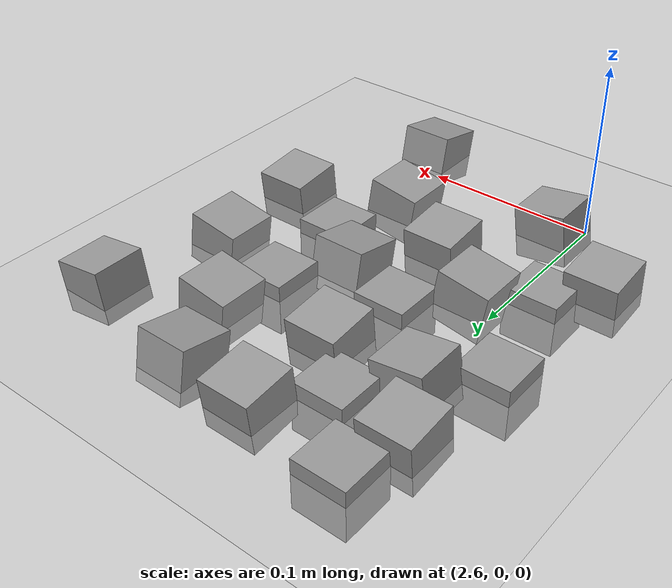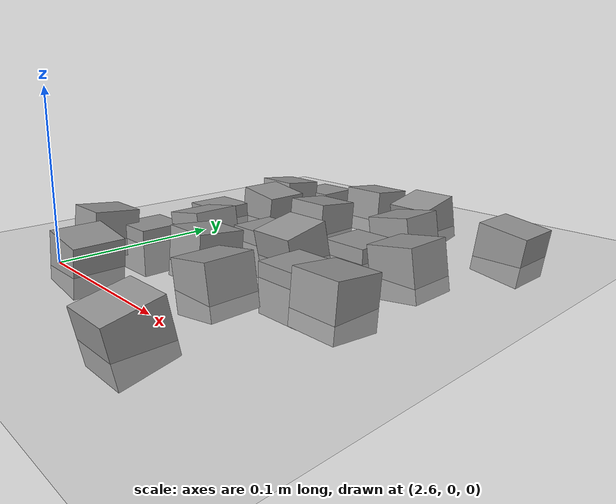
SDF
<sdf version="1.7">
 <world name="default">
  <model name="ground_plane">
   <static>1</static>
   <link name="link">
    <collision name="collision">
     <geometry><plane><normal>0 0 1</normal><size>100 100</size></plane></geometry>
     <surface><friction><ode><mu>100</mu><mu2>50</mu2></ode></friction></surface>
    </collision>
    <visual name="visual">
     <cast_shadows>0</cast_shadows>
     <geometry><plane><normal>0 0 1</normal><size>100 100</size></plane></geometry>
     <material>
      <script><uri>file://media/materials/scripts/gazebo.material</uri><name>Gazebo/Grey</name></script>
     </material>
    </visual>
   </link>
  </model>
  <model name="stone_road_7">
   <link name="link_0_clone_12">
    <inertial>
     <mass>1</mass>
     <inertia>
      <ixx>0.166667</ixx>
      <ixy>0</ixy>
      <ixz>0</ixz>
      <iyy>0.166667</iyy>
      <iyz>0</iyz>
      <izz>0.166667</izz>
     </inertia>
    </inertial>
    <pose>0.142624 -0.262715 0.003778 0.2 -0 0</pose>
    <kinematic>1</kinematic>
    <visual name="visual">
     <geometry><box><size>0.03 0.03 0.03</size></box></geometry>
     <material>
      <lighting>1</lighting>
      <script><uri>file://media/materials/scripts/gazebo.material</uri><name>Gazebo/Grey</name></script>
      <shader type="pixel"><normal_map>__default__</normal_map></shader>
      <ambient>0.3 0.3 0.3 1</ambient>
      <diffuse>0.7 0.7 0.7 1</diffuse>
      <specular>0.01 0.01 0.01 1</specular>
      <emissive>0 0 0 1</emissive>
     </material>
    </visual>
    <collision name="collision">
     <geometry><box><size>0.03 0.03 0.03</size></box></geometry>
     <surface>
      <friction>
       <ode><mu>1</mu><mu2>1</mu2><fdir1>0 0 0</fdir1><slip1>0</slip1><slip2>0</slip2></ode>
       <torsional>
        <coefficient>1</coefficient>
        <patch_radius>0</patch_radius>
        <surface_radius>0</surface_radius>
        <use_patch_radius>1</use_patch_radius>
        <ode><slip>0</slip></ode>
       </torsional>
      </friction>
      <bounce><restitution_coefficient>0</restitution_coefficient><threshold>1e+06</threshold></bounce>
      <contact>
       <collide_without_contact>0</collide_without_contact>
       <collide_without_contact_bitmask>1</collide_without_contact_bitmask>
       <collide_bitmask>1</collide_bitmask>
       <ode>
        <soft_cfm>0</soft_cfm>
        <soft_erp>0.2</soft_erp>
        <kp>1e+13</kp>
        <kd>1</kd>
        <max_vel>0.01</max_vel>
        <min_depth>0</min_depth>
       </ode>
       <bullet>
        <split_impulse>1</split_impulse>
        <split_impulse_penetration_threshold>-0.01</split_impulse_penetration_threshold>
        <soft_cfm>0</soft_cfm>
        <soft_erp>0.2</soft_erp>
        <kp>1e+13</kp>
        <kd>1</kd>
       </bullet>
      </contact>
     </surface>
    </collision>
   </link>
   <link name="link_0_clone_13">
    <inertial>
     <mass>1</mass>
     <inertia>
      <ixx>0.166667</ixx>
      <ixy>0</ixy>
      <ixz>0</ixz>
      <iyy>0.166667</iyy>
      <iyz>0</iyz>
      <izz>0.166667</izz>
     </inertia>
    </inertial>
    <pose>0.107601 -0.134881 0.003778 0.2 -0 0</pose>
    <kinematic>1</kinematic>
    <visual name="visual">
     <geometry><box><size>0.03 0.03 0.03</size></box></geometry>
     <material>
      <lighting>1</lighting>
      <script><uri>file://media/materials/scripts/gazebo.material</uri><name>Gazebo/Grey</name></script>
      <shader type="pixel"><normal_map>__default__</normal_map></shader>
      <ambient>0.3 0.3 0.3 1</ambient>
      <diffuse>0.7 0.7 0.7 1</diffuse>
      <specular>0.01 0.01 0.01 1</specular>
      <emissive>0 0 0 1</emissive>
     </material>
    </visual>
    <collision name="collision">
     <geometry><box><size>0.03 0.03 0.03</size></box></geometry>
     <surface>
      <friction>
       <ode><mu>1</mu><mu2>1</mu2><fdir1>0 0 0</fdir1><slip1>0</slip1><slip2>0</slip2></ode>
       <torsional>
        <coefficient>1</coefficient>
        <patch_radius>0</patch_radius>
        <surface_radius>0</surface_radius>
        <use_patch_radius>1</use_patch_radius>
        <ode><slip>0</slip></ode>
       </torsional>
      </friction>
      <bounce><restitution_coefficient>0</restitution_coefficient><threshold>1e+06</threshold></bounce>
      <contact>
       <collide_without_contact>0</collide_without_contact>
       <collide_without_contact_bitmask>1</collide_without_contact_bitmask>
       <collide_bitmask>1</collide_bitmask>
       <ode>
        <soft_cfm>0</soft_cfm>
        <soft_erp>0.2</soft_erp>
        <kp>1e+13</kp>
        <kd>1</kd>
        <max_vel>0.01</max_vel>
        <min_depth>0</min_depth>
       </ode>
       <bullet>
        <split_impulse>1</split_impulse>
        <split_impulse_penetration_threshold>-0.01</split_impulse_penetration_threshold>
        <soft_cfm>0</soft_cfm>
        <soft_erp>0.2</soft_erp>
        <kp>1e+13</kp>
        <kd>1</kd>
       </bullet>
      </contact>
     </surface>
    </collision>
   </link>
   <link name="link_0_clone_2_clone_0">
    <inertial>
     <mass>1</mass>
     <inertia>
      <ixx>0.166667</ixx>
      <ixy>0</ixy>
      <ixz>0</ixz>
      <iyy>0.166667</iyy>
      <iyz>0</iyz>
      <izz>0.166667</izz>
     </inertia>
    </inertial>
    <pose>0.026852 -0.0813 0.003778 0 0.15 0</pose>
    <kinematic>1</kinematic>
    <visual name="visual">
     <geometry><box><size>0.03 0.03 0.03</size></box></geometry>
     <material>
      <lighting>1</lighting>
      <script><uri>file://media/materials/scripts/gazebo.material</uri><name>Gazebo/Grey</name></script>
      <shader type="pixel"><normal_map>__default__</normal_map></shader>
      <ambient>0.3 0.3 0.3 1</ambient>
      <diffuse>0.7 0.7 0.7 1</diffuse>
      <specular>0.01 0.01 0.01 1</specular>
      <emissive>0 0 0 1</emissive>
     </material>
    </visual>
    <collision name="collision">
     <geometry><box><size>0.03 0.03 0.03</size></box></geometry>
     <surface>
      <friction>
       <ode><mu>1</mu><mu2>1</mu2><fdir1>0 0 0</fdir1><slip1>0</slip1><slip2>0</slip2></ode>
       <torsional>
        <coefficient>1</coefficient>
        <patch_radius>0</patch_radius>
        <surface_radius>0</surface_radius>
        <use_patch_radius>1</use_patch_radius>
        <ode><slip>0</slip></ode>
       </torsional>
      </friction>
      <bounce><restitution_coefficient>0</restitution_coefficient><threshold>1e+06</threshold></bounce>
      <contact>
       <collide_without_contact>0</collide_without_contact>
       <collide_without_contact_bitmask>1</collide_without_contact_bitmask>
       <collide_bitmask>1</collide_bitmask>
       <ode>
        <soft_cfm>0</soft_cfm>
        <soft_erp>0.2</soft_erp>
        <kp>1e+13</kp>
        <kd>1</kd>
        <max_vel>0.01</max_vel>
        <min_depth>0</min_depth>
       </ode>
       <bullet>
        <split_impulse>1</split_impulse>
        <split_impulse_penetration_threshold>-0.01</split_impulse_penetration_threshold>
        <soft_cfm>0</soft_cfm>
        <soft_erp>0.2</soft_erp>
        <kp>1e+13</kp>
        <kd>1</kd>
       </bullet>
      </contact>
     </surface>
    </collision>
   </link>
   <link name="link_0_clone_2_clone_2_clone_13_clone_clone_10">
    <inertial>
     <mass>1</mass>
     <inertia>
      <ixx>0.166667</ixx>
      <ixy>0</ixy>
      <ixz>0</ixz>
      <iyy>0.166667</iyy>
      <iyz>0</iyz>
      <izz>0.166667</izz>
     </inertia>
    </inertial>
    <pose>-0.006825 -0.196489 0.003778 -0.1 0 0</pose>
    <kinematic>1</kinematic>
    <visual name="visual">
     <geometry><box><size>0.03 0.03 0.03</size></box></geometry>
     <material>
      <lighting>1</lighting>
      <script><uri>file://media/materials/scripts/gazebo.material</uri><name>Gazebo/Grey</name></script>
      <shader type="pixel"><normal_map>__default__</normal_map></shader>
      <ambient>0.3 0.3 0.3 1</ambient>
      <diffuse>0.7 0.7 0.7 1</diffuse>
      <specular>0.01 0.01 0.01 1</specular>
      <emissive>0 0 0 1</emissive>
     </material>
    </visual>
    <collision name="collision">
     <geometry><box><size>0.03 0.03 0.03</size></box></geometry>
     <surface>
      <friction>
       <ode><mu>1</mu><mu2>1</mu2><fdir1>0 0 0</fdir1><slip1>0</slip1><slip2>0</slip2></ode>
       <torsional>
        <coefficient>1</coefficient>
        <patch_radius>0</patch_radius>
        <surface_radius>0</surface_radius>
        <use_patch_radius>1</use_patch_radius>
        <ode><slip>0</slip></ode>
       </torsional>
      </friction>
      <bounce><restitution_coefficient>0</restitution_coefficient><threshold>1e+06</threshold></bounce>
      <contact>
       <collide_without_contact>0</collide_without_contact>
       <collide_without_contact_bitmask>1</collide_without_contact_bitmask>
       <collide_bitmask>1</collide_bitmask>
       <ode>
        <soft_cfm>0</soft_cfm>
        <soft_erp>0.2</soft_erp>
        <kp>1e+13</kp>
        <kd>1</kd>
        <max_vel>0.01</max_vel>
        <min_depth>0</min_depth>
       </ode>
       <bullet>
        <split_impulse>1</split_impulse>
        <split_impulse_penetration_threshold>-0.01</split_impulse_penetration_threshold>
        <soft_cfm>0</soft_cfm>
        <soft_erp>0.2</soft_erp>
        <kp>1e+13</kp>
        <kd>1</kd>
       </bullet>
      </contact>
     </surface>
    </collision>
   </link>
   <link name="link_0_clone_2_clone_2_clone_13_clone_clone_11">
    <inertial>
     <mass>1</mass>
     <inertia>
      <ixx>0.166667</ixx>
      <ixy>0</ixy>
      <ixz>0</ixz>
      <iyy>0.166667</iyy>
      <iyz>0</iyz>
      <izz>0.166667</izz>
     </inertia>
    </inertial>
    <pose>0.178889 -0.173779 0.003778 -0.1 0 0</pose>
    <kinematic>1</kinematic>
    <visual name="visual">
     <geometry><box><size>0.03 0.03 0.03</size></box></geometry>
     <material>
      <lighting>1</lighting>
      <script><uri>file://media/materials/scripts/gazebo.material</uri><name>Gazebo/Grey</name></script>
      <shader type="pixel"><normal_map>__default__</normal_map></shader>
      <ambient>0.3 0.3 0.3 1</ambient>
      <diffuse>0.7 0.7 0.7 1</diffuse>
      <specular>0.01 0.01 0.01 1</specular>
      <emissive>0 0 0 1</emissive>
     </material>
    </visual>
    <collision name="collision">
     <geometry><box><size>0.03 0.03 0.03</size></box></geometry>
     <surface>
      <friction>
       <ode><mu>1</mu><mu2>1</mu2><fdir1>0 0 0</fdir1><slip1>0</slip1><slip2>0</slip2></ode>
       <torsional>
        <coefficient>1</coefficient>
        <patch_radius>0</patch_radius>
        <surface_radius>0</surface_radius>
        <use_patch_radius>1</use_patch_radius>
        <ode><slip>0</slip></ode>
       </torsional>
      </friction>
      <bounce><restitution_coefficient>0</restitution_coefficient><threshold>1e+06</threshold></bounce>
      <contact>
       <collide_without_contact>0</collide_without_contact>
       <collide_without_contact_bitmask>1</collide_without_contact_bitmask>
       <collide_bitmask>1</collide_bitmask>
       <ode>
        <soft_cfm>0</soft_cfm>
        <soft_erp>0.2</soft_erp>
        <kp>1e+13</kp>
        <kd>1</kd>
        <max_vel>0.01</max_vel>
        <min_depth>0</min_depth>
       </ode>
       <bullet>
        <split_impulse>1</split_impulse>
        <split_impulse_penetration_threshold>-0.01</split_impulse_penetration_threshold>
        <soft_cfm>0</soft_cfm>
        <soft_erp>0.2</soft_erp>
        <kp>1e+13</kp>
        <kd>1</kd>
       </bullet>
      </contact>
     </surface>
    </collision>
   </link>
   <link name="link_0_clone_2_clone_2_clone_13_clone_clone_12">
    <inertial>
     <mass>1</mass>
     <inertia>
      <ixx>0.166667</ixx>
      <ixy>0</ixy>
      <ixz>0</ixz>
      <iyy>0.166667</iyy>
      <iyz>0</iyz>
      <izz>0.166667</izz>
     </inertia>
    </inertial>
    <pose>0.078701 -0.177208 0.003778 -0.1 0 0</pose>
    <kinematic>1</kinematic>
    <visual name="visual">
     <geometry><box><size>0.03 0.03 0.03</size></box></geometry>
     <material>
      <lighting>1</lighting>
      <script><uri>file://media/materials/scripts/gazebo.material</uri><name>Gazebo/Grey</name></script>
      <shader type="pixel"><normal_map>__default__</normal_map></shader>
      <ambient>0.3 0.3 0.3 1</ambient>
      <diffuse>0.7 0.7 0.7 1</diffuse>
      <specular>0.01 0.01 0.01 1</specular>
      <emissive>0 0 0 1</emissive>
     </material>
    </visual>
    <collision name="collision">
     <geometry><box><size>0.03 0.03 0.03</size></box></geometry>
     <surface>
      <friction>
       <ode><mu>1</mu><mu2>1</mu2><fdir1>0 0 0</fdir1><slip1>0</slip1><slip2>0</slip2></ode>
       <torsional>
        <coefficient>1</coefficient>
        <patch_radius>0</patch_radius>
        <surface_radius>0</surface_radius>
        <use_patch_radius>1</use_patch_radius>
        <ode><slip>0</slip></ode>
       </torsional>
      </friction>
      <bounce><restitution_coefficient>0</restitution_coefficient><threshold>1e+06</threshold></bounce>
      <contact>
       <collide_without_contact>0</collide_without_contact>
       <collide_without_contact_bitmask>1</collide_without_contact_bitmask>
       <collide_bitmask>1</collide_bitmask>
       <ode>
        <soft_cfm>0</soft_cfm>
        <soft_erp>0.2</soft_erp>
        <kp>1e+13</kp>
        <kd>1</kd>
        <max_vel>0.01</max_vel>
        <min_depth>0</min_depth>
       </ode>
       <bullet>
        <split_impulse>1</split_impulse>
        <split_impulse_penetration_threshold>-0.01</split_impulse_penetration_threshold>
        <soft_cfm>0</soft_cfm>
        <soft_erp>0.2</soft_erp>
        <kp>1e+13</kp>
        <kd>1</kd>
       </bullet>
      </contact>
     </surface>
    </collision>
   </link>
   <link name="link_0_clone_2_clone_2_clone_13_clone_clone_16_clone_14">
    <inertial>
     <mass>1</mass>
     <inertia>
      <ixx>0.166667</ixx>
      <ixy>0</ixy>
      <ixz>0</ixz>
      <iyy>0.166667</iyy>
      <iyz>0</iyz>
      <izz>0.166667</izz>
     </inertia>
    </inertial>
    <pose>0.051911 -0.054424 -0.006222 0 -0 0</pose>
    <kinematic>1</kinematic>
    <visual name="visual">
     <geometry><box><size>0.03 0.03 0.03</size></box></geometry>
     <material>
      <lighting>1</lighting>
      <script><uri>file://media/materials/scripts/gazebo.material</uri><name>Gazebo/Grey</name></script>
      <shader type="pixel"><normal_map>__default__</normal_map></shader>
      <ambient>0.3 0.3 0.3 1</ambient>
      <diffuse>0.7 0.7 0.7 1</diffuse>
      <specular>0.01 0.01 0.01 1</specular>
      <emissive>0 0 0 1</emissive>
     </material>
    </visual>
    <collision name="collision">
     <geometry><box><size>0.03 0.03 0.03</size></box></geometry>
     <surface>
      <friction>
       <ode><mu>1</mu><mu2>1</mu2><fdir1>0 0 0</fdir1><slip1>0</slip1><slip2>0</slip2></ode>
       <torsional>
        <coefficient>1</coefficient>
        <patch_radius>0</patch_radius>
        <surface_radius>0</surface_radius>
        <use_patch_radius>1</use_patch_radius>
        <ode><slip>0</slip></ode>
       </torsional>
      </friction>
      <bounce><restitution_coefficient>0</restitution_coefficient><threshold>1e+06</threshold></bounce>
      <contact>
       <collide_without_contact>0</collide_without_contact>
       <collide_without_contact_bitmask>1</collide_without_contact_bitmask>
       <collide_bitmask>1</collide_bitmask>
       <ode>
        <soft_cfm>0</soft_cfm>
        <soft_erp>0.2</soft_erp>
        <kp>1e+13</kp>
        <kd>1</kd>
        <max_vel>0.01</max_vel>
        <min_depth>0</min_depth>
       </ode>
       <bullet>
        <split_impulse>1</split_impulse>
        <split_impulse_penetration_threshold>-0.01</split_impulse_penetration_threshold>
        <soft_cfm>0</soft_cfm>
        <soft_erp>0.2</soft_erp>
        <kp>1e+13</kp>
        <kd>1</kd>
       </bullet>
      </contact>
     </surface>
    </collision>
   </link>
   <link name="link_0_clone_2_clone_2_clone_13_clone_clone_16_clone_15">
    <inertial>
     <mass>1</mass>
     <inertia>
      <ixx>0.166667</ixx>
      <ixy>0</ixy>
      <ixz>0</ixz>
      <iyy>0.166667</iyy>
      <iyz>0</iyz>
      <izz>0.166667</izz>
     </inertia>
    </inertial>
    <pose>0.133032 -0.103459 -0.006222 0 -0 0</pose>
    <kinematic>1</kinematic>
    <visual name="visual">
     <geometry><box><size>0.03 0.03 0.03</size></box></geometry>
     <material>
      <lighting>1</lighting>
      <script><uri>file://media/materials/scripts/gazebo.material</uri><name>Gazebo/Grey</name></script>
      <shader type="pixel"><normal_map>__default__</normal_map></shader>
      <ambient>0.3 0.3 0.3 1</ambient>
      <diffuse>0.7 0.7 0.7 1</diffuse>
      <specular>0.01 0.01 0.01 1</specular>
      <emissive>0 0 0 1</emissive>
     </material>
    </visual>
    <collision name="collision">
     <geometry><box><size>0.03 0.03 0.03</size></box></geometry>
     <surface>
      <friction>
       <ode><mu>1</mu><mu2>1</mu2><fdir1>0 0 0</fdir1><slip1>0</slip1><slip2>0</slip2></ode>
       <torsional>
        <coefficient>1</coefficient>
        <patch_radius>0</patch_radius>
        <surface_radius>0</surface_radius>
        <use_patch_radius>1</use_patch_radius>
        <ode><slip>0</slip></ode>
       </torsional>
      </friction>
      <bounce><restitution_coefficient>0</restitution_coefficient><threshold>1e+06</threshold></bounce>
      <contact>
       <collide_without_contact>0</collide_without_contact>
       <collide_without_contact_bitmask>1</collide_without_contact_bitmask>
       <collide_bitmask>1</collide_bitmask>
       <ode>
        <soft_cfm>0</soft_cfm>
        <soft_erp>0.2</soft_erp>
        <kp>1e+13</kp>
        <kd>1</kd>
        <max_vel>0.01</max_vel>
        <min_depth>0</min_depth>
       </ode>
       <bullet>
        <split_impulse>1</split_impulse>
        <split_impulse_penetration_threshold>-0.01</split_impulse_penetration_threshold>
        <soft_cfm>0</soft_cfm>
        <soft_erp>0.2</soft_erp>
        <kp>1e+13</kp>
        <kd>1</kd>
       </bullet>
      </contact>
     </surface>
    </collision>
   </link>
   <link name="link_0_clone_2_clone_2_clone_13_clone_clone_16_clone_16">
    <inertial>
     <mass>1</mass>
     <inertia>
      <ixx>0.166667</ixx>
      <ixy>0</ixy>
      <ixz>0</ixz>
      <iyy>0.166667</iyy>
      <iyz>0</iyz>
      <izz>0.166667</izz>
     </inertia>
    </inertial>
    <pose>0.071475 -0.124425 -0.006222 0 -0 0</pose>
    <kinematic>1</kinematic>
    <visual name="visual">
     <geometry><box><size>0.03 0.03 0.03</size></box></geometry>
     <material>
      <lighting>1</lighting>
      <script><uri>file://media/materials/scripts/gazebo.material</uri><name>Gazebo/Grey</name></script>
      <shader type="pixel"><normal_map>__default__</normal_map></shader>
      <ambient>0.3 0.3 0.3 1</ambient>
      <diffuse>0.7 0.7 0.7 1</diffuse>
      <specular>0.01 0.01 0.01 1</specular>
      <emissive>0 0 0 1</emissive>
     </material>
    </visual>
    <collision name="collision">
     <geometry><box><size>0.03 0.03 0.03</size></box></geometry>
     <surface>
      <friction>
       <ode><mu>1</mu><mu2>1</mu2><fdir1>0 0 0</fdir1><slip1>0</slip1><slip2>0</slip2></ode>
       <torsional>
        <coefficient>1</coefficient>
        <patch_radius>0</patch_radius>
        <surface_radius>0</surface_radius>
        <use_patch_radius>1</use_patch_radius>
        <ode><slip>0</slip></ode>
       </torsional>
      </friction>
      <bounce><restitution_coefficient>0</restitution_coefficient><threshold>1e+06</threshold></bounce>
      <contact>
       <collide_without_contact>0</collide_without_contact>
       <collide_without_contact_bitmask>1</collide_without_contact_bitmask>
       <collide_bitmask>1</collide_bitmask>
       <ode>
        <soft_cfm>0</soft_cfm>
        <soft_erp>0.2</soft_erp>
        <kp>1e+13</kp>
        <kd>1</kd>
        <max_vel>0.01</max_vel>
        <min_depth>0</min_depth>
       </ode>
       <bullet>
        <split_impulse>1</split_impulse>
        <split_impulse_penetration_threshold>-0.01</split_impulse_penetration_threshold>
        <soft_cfm>0</soft_cfm>
        <soft_erp>0.2</soft_erp>
        <kp>1e+13</kp>
        <kd>1</kd>
       </bullet>
      </contact>
     </surface>
    </collision>
   </link>
   <link name="link_0_clone_2_clone_2_clone_13_clone_clone_16_clone_17">
    <inertial>
     <mass>1</mass>
     <inertia>
      <ixx>0.166667</ixx>
      <ixy>0</ixy>
      <ixz>0</ixz>
      <iyy>0.166667</iyy>
      <iyz>0</iyz>
      <izz>0.166667</izz>
     </inertia>
    </inertial>
    <pose>0.014877 -0.175392 -0.006222 0 -0 0</pose>
    <kinematic>1</kinematic>
    <visual name="visual">
     <geometry><box><size>0.03 0.03 0.03</size></box></geometry>
     <material>
      <lighting>1</lighting>
      <script><uri>file://media/materials/scripts/gazebo.material</uri><name>Gazebo/Grey</name></script>
      <shader type="pixel"><normal_map>__default__</normal_map></shader>
      <ambient>0.3 0.3 0.3 1</ambient>
      <diffuse>0.7 0.7 0.7 1</diffuse>
      <specular>0.01 0.01 0.01 1</specular>
      <emissive>0 0 0 1</emissive>
     </material>
    </visual>
    <collision name="collision">
     <geometry><box><size>0.03 0.03 0.03</size></box></geometry>
     <surface>
      <friction>
       <ode><mu>1</mu><mu2>1</mu2><fdir1>0 0 0</fdir1><slip1>0</slip1><slip2>0</slip2></ode>
       <torsional>
        <coefficient>1</coefficient>
        <patch_radius>0</patch_radius>
        <surface_radius>0</surface_radius>
        <use_patch_radius>1</use_patch_radius>
        <ode><slip>0</slip></ode>
       </torsional>
      </friction>
      <bounce><restitution_coefficient>0</restitution_coefficient><threshold>1e+06</threshold></bounce>
      <contact>
       <collide_without_contact>0</collide_without_contact>
       <collide_without_contact_bitmask>1</collide_without_contact_bitmask>
       <collide_bitmask>1</collide_bitmask>
       <ode>
        <soft_cfm>0</soft_cfm>
        <soft_erp>0.2</soft_erp>
        <kp>1e+13</kp>
        <kd>1</kd>
        <max_vel>0.01</max_vel>
        <min_depth>0</min_depth>
       </ode>
       <bullet>
        <split_impulse>1</split_impulse>
        <split_impulse_penetration_threshold>-0.01</split_impulse_penetration_threshold>
        <soft_cfm>0</soft_cfm>
        <soft_erp>0.2</soft_erp>
        <kp>1e+13</kp>
        <kd>1</kd>
       </bullet>
      </contact>
     </surface>
    </collision>
   </link>
   <link name="link_0_clone_2_clone_2_clone_13_clone_clone_16_clone_18">
    <inertial>
     <mass>1</mass>
     <inertia>
      <ixx>0.166667</ixx>
      <ixy>0</ixy>
      <ixz>0</ixz>
      <iyy>0.166667</iyy>
      <iyz>0</iyz>
      <izz>0.166667</izz>
     </inertia>
    </inertial>
    <pose>0.137197 -0.158693 -0.006222 0 -0 0</pose>
    <kinematic>1</kinematic>
    <visual name="visual">
     <geometry><box><size>0.03 0.03 0.03</size></box></geometry>
     <material>
      <lighting>1</lighting>
      <script><uri>file://media/materials/scripts/gazebo.material</uri><name>Gazebo/Grey</name></script>
      <shader type="pixel"><normal_map>__default__</normal_map></shader>
      <ambient>0.3 0.3 0.3 1</ambient>
      <diffuse>0.7 0.7 0.7 1</diffuse>
      <specular>0.01 0.01 0.01 1</specular>
      <emissive>0 0 0 1</emissive>
     </material>
    </visual>
    <collision name="collision">
     <geometry><box><size>0.03 0.03 0.03</size></box></geometry>
     <surface>
      <friction>
       <ode><mu>1</mu><mu2>1</mu2><fdir1>0 0 0</fdir1><slip1>0</slip1><slip2>0</slip2></ode>
       <torsional>
        <coefficient>1</coefficient>
        <patch_radius>0</patch_radius>
        <surface_radius>0</surface_radius>
        <use_patch_radius>1</use_patch_radius>
        <ode><slip>0</slip></ode>
       </torsional>
      </friction>
      <bounce><restitution_coefficient>0</restitution_coefficient><threshold>1e+06</threshold></bounce>
      <contact>
       <collide_without_contact>0</collide_without_contact>
       <collide_without_contact_bitmask>1</collide_without_contact_bitmask>
       <collide_bitmask>1</collide_bitmask>
       <ode>
        <soft_cfm>0</soft_cfm>
        <soft_erp>0.2</soft_erp>
        <kp>1e+13</kp>
        <kd>1</kd>
        <max_vel>0.01</max_vel>
        <min_depth>0</min_depth>
       </ode>
       <bullet>
        <split_impulse>1</split_impulse>
        <split_impulse_penetration_threshold>-0.01</split_impulse_penetration_threshold>
        <soft_cfm>0</soft_cfm>
        <soft_erp>0.2</soft_erp>
        <kp>1e+13</kp>
        <kd>1</kd>
       </bullet>
      </contact>
     </surface>
    </collision>
   </link>
   <link name="link_0_clone_2_clone_2_clone_13_clone_clone_16_clone_6">
    <inertial>
     <mass>1</mass>
     <inertia>
      <ixx>0.166667</ixx>
      <ixy>0</ixy>
      <ixz>0</ixz>
      <iyy>0.166667</iyy>
      <iyz>0</iyz>
      <izz>0.166667</izz>
     </inertia>
    </inertial>
    <pose>0.020774 -0.018727 -0.006222 0 -0 0</pose>
    <kinematic>1</kinematic>
    <visual name="visual">
     <geometry><box><size>0.03 0.03 0.03</size></box></geometry>
     <material>
      <lighting>1</lighting>
      <script><uri>file://media/materials/scripts/gazebo.material</uri><name>Gazebo/Grey</name></script>
      <shader type="pixel"><normal_map>__default__</normal_map></shader>
      <ambient>0.3 0.3 0.3 1</ambient>
      <diffuse>0.7 0.7 0.7 1</diffuse>
      <specular>0.01 0.01 0.01 1</specular>
      <emissive>0 0 0 1</emissive>
     </material>
    </visual>
    <collision name="collision">
     <geometry><box><size>0.03 0.03 0.03</size></box></geometry>
     <surface>
      <friction>
       <ode><mu>1</mu><mu2>1</mu2><fdir1>0 0 0</fdir1><slip1>0</slip1><slip2>0</slip2></ode>
       <torsional>
        <coefficient>1</coefficient>
        <patch_radius>0</patch_radius>
        <surface_radius>0</surface_radius>
        <use_patch_radius>1</use_patch_radius>
        <ode><slip>0</slip></ode>
       </torsional>
      </friction>
      <bounce><restitution_coefficient>0</restitution_coefficient><threshold>1e+06</threshold></bounce>
      <contact>
       <collide_without_contact>0</collide_without_contact>
       <collide_without_contact_bitmask>1</collide_without_contact_bitmask>
       <collide_bitmask>1</collide_bitmask>
       <ode>
        <soft_cfm>0</soft_cfm>
        <soft_erp>0.2</soft_erp>
        <kp>1e+13</kp>
        <kd>1</kd>
        <max_vel>0.01</max_vel>
        <min_depth>0</min_depth>
       </ode>
       <bullet>
        <split_impulse>1</split_impulse>
        <split_impulse_penetration_threshold>-0.01</split_impulse_penetration_threshold>
        <soft_cfm>0</soft_cfm>
        <soft_erp>0.2</soft_erp>
        <kp>1e+13</kp>
        <kd>1</kd>
       </bullet>
      </contact>
     </surface>
    </collision>
   </link>
   <link name="link_0_clone_2_clone_2_clone_13_clone_clone_16_clone_7">
    <inertial>
     <mass>1</mass>
     <inertia>
      <ixx>0.166667</ixx>
      <ixy>0</ixy>
      <ixz>0</ixz>
      <iyy>0.166667</iyy>
      <iyz>0</iyz>
      <izz>0.166667</izz>
     </inertia>
    </inertial>
    <pose>0.000883 -0.109959 -0.006222 0 -0 0</pose>
    <kinematic>1</kinematic>
    <visual name="visual">
     <geometry><box><size>0.03 0.03 0.03</size></box></geometry>
     <material>
      <lighting>1</lighting>
      <script><uri>file://media/materials/scripts/gazebo.material</uri><name>Gazebo/Grey</name></script>
      <shader type="pixel"><normal_map>__default__</normal_map></shader>
      <ambient>0.3 0.3 0.3 1</ambient>
      <diffuse>0.7 0.7 0.7 1</diffuse>
      <specular>0.01 0.01 0.01 1</specular>
      <emissive>0 0 0 1</emissive>
     </material>
    </visual>
    <collision name="collision">
     <geometry><box><size>0.03 0.03 0.03</size></box></geometry>
     <surface>
      <friction>
       <ode><mu>1</mu><mu2>1</mu2><fdir1>0 0 0</fdir1><slip1>0</slip1><slip2>0</slip2></ode>
       <torsional>
        <coefficient>1</coefficient>
        <patch_radius>0</patch_radius>
        <surface_radius>0</surface_radius>
        <use_patch_radius>1</use_patch_radius>
        <ode><slip>0</slip></ode>
       </torsional>
      </friction>
      <bounce><restitution_coefficient>0</restitution_coefficient><threshold>1e+06</threshold></bounce>
      <contact>
       <collide_without_contact>0</collide_without_contact>
       <collide_without_contact_bitmask>1</collide_without_contact_bitmask>
       <collide_bitmask>1</collide_bitmask>
       <ode>
        <soft_cfm>0</soft_cfm>
        <soft_erp>0.2</soft_erp>
        <kp>1e+13</kp>
        <kd>1</kd>
        <max_vel>0.01</max_vel>
        <min_depth>0</min_depth>
       </ode>
       <bullet>
        <split_impulse>1</split_impulse>
        <split_impulse_penetration_threshold>-0.01</split_impulse_penetration_threshold>
        <soft_cfm>0</soft_cfm>
        <soft_erp>0.2</soft_erp>
        <kp>1e+13</kp>
        <kd>1</kd>
       </bullet>
      </contact>
     </surface>
    </collision>
   </link>
   <link name="link_0_clone_2_clone_2_clone_13_clone_clone_4">
    <inertial>
     <mass>1</mass>
     <inertia>
      <ixx>0.166667</ixx>
      <ixy>0</ixy>
      <ixz>0</ixz>
      <iyy>0.166667</iyy>
      <iyz>0</iyz>
      <izz>0.166667</izz>
     </inertia>
    </inertial>
    <pose>0.078198 -0.024053 0.003778 -0.1 0 0</pose>
    <kinematic>1</kinematic>
    <visual name="visual">
     <geometry><box><size>0.03 0.03 0.03</size></box></geometry>
     <material>
      <lighting>1</lighting>
      <script><uri>file://media/materials/scripts/gazebo.material</uri><name>Gazebo/Grey</name></script>
      <shader type="pixel"><normal_map>__default__</normal_map></shader>
      <ambient>0.3 0.3 0.3 1</ambient>
      <diffuse>0.7 0.7 0.7 1</diffuse>
      <specular>0.01 0.01 0.01 1</specular>
      <emissive>0 0 0 1</emissive>
     </material>
    </visual>
    <collision name="collision">
     <geometry><box><size>0.03 0.03 0.03</size></box></geometry>
     <surface>
      <friction>
       <ode><mu>1</mu><mu2>1</mu2><fdir1>0 0 0</fdir1><slip1>0</slip1><slip2>0</slip2></ode>
       <torsional>
        <coefficient>1</coefficient>
        <patch_radius>0</patch_radius>
        <surface_radius>0</surface_radius>
        <use_patch_radius>1</use_patch_radius>
        <ode><slip>0</slip></ode>
       </torsional>
      </friction>
      <bounce><restitution_coefficient>0</restitution_coefficient><threshold>1e+06</threshold></bounce>
      <contact>
       <collide_without_contact>0</collide_without_contact>
       <collide_without_contact_bitmask>1</collide_without_contact_bitmask>
       <collide_bitmask>1</collide_bitmask>
       <ode>
        <soft_cfm>0</soft_cfm>
        <soft_erp>0.2</soft_erp>
        <kp>1e+13</kp>
        <kd>1</kd>
        <max_vel>0.01</max_vel>
        <min_depth>0</min_depth>
       </ode>
       <bullet>
        <split_impulse>1</split_impulse>
        <split_impulse_penetration_threshold>-0.01</split_impulse_penetration_threshold>
        <soft_cfm>0</soft_cfm>
        <soft_erp>0.2</soft_erp>
        <kp>1e+13</kp>
        <kd>1</kd>
       </bullet>
      </contact>
     </surface>
    </collision>
   </link>
   <link name="link_0_clone_2_clone_2_clone_13_clone_clone_5">
    <inertial>
     <mass>1</mass>
     <inertia>
      <ixx>0.166667</ixx>
      <ixy>0</ixy>
      <ixz>0</ixz>
      <iyy>0.166667</iyy>
      <iyz>0</iyz>
      <izz>0.166667</izz>
     </inertia>
    </inertial>
    <pose>0.076743 -0.079785 0.003778 -0.1 0 0</pose>
    <kinematic>1</kinematic>
    <visual name="visual">
     <geometry><box><size>0.03 0.03 0.03</size></box></geometry>
     <material>
      <lighting>1</lighting>
      <script><uri>file://media/materials/scripts/gazebo.material</uri><name>Gazebo/Grey</name></script>
      <shader type="pixel"><normal_map>__default__</normal_map></shader>
      <ambient>0.3 0.3 0.3 1</ambient>
      <diffuse>0.7 0.7 0.7 1</diffuse>
      <specular>0.01 0.01 0.01 1</specular>
      <emissive>0 0 0 1</emissive>
     </material>
    </visual>
    <collision name="collision">
     <geometry><box><size>0.03 0.03 0.03</size></box></geometry>
     <surface>
      <friction>
       <ode><mu>1</mu><mu2>1</mu2><fdir1>0 0 0</fdir1><slip1>0</slip1><slip2>0</slip2></ode>
       <torsional>
        <coefficient>1</coefficient>
        <patch_radius>0</patch_radius>
        <surface_radius>0</surface_radius>
        <use_patch_radius>1</use_patch_radius>
        <ode><slip>0</slip></ode>
       </torsional>
      </friction>
      <bounce><restitution_coefficient>0</restitution_coefficient><threshold>1e+06</threshold></bounce>
      <contact>
       <collide_without_contact>0</collide_without_contact>
       <collide_without_contact_bitmask>1</collide_without_contact_bitmask>
       <collide_bitmask>1</collide_bitmask>
       <ode>
        <soft_cfm>0</soft_cfm>
        <soft_erp>0.2</soft_erp>
        <kp>1e+13</kp>
        <kd>1</kd>
        <max_vel>0.01</max_vel>
        <min_depth>0</min_depth>
       </ode>
       <bullet>
        <split_impulse>1</split_impulse>
        <split_impulse_penetration_threshold>-0.01</split_impulse_penetration_threshold>
        <soft_cfm>0</soft_cfm>
        <soft_erp>0.2</soft_erp>
        <kp>1e+13</kp>
        <kd>1</kd>
       </bullet>
      </contact>
     </surface>
    </collision>
   </link>
   <link name="link_0_clone_2_clone_2_clone_13_clone_clone_6">
    <inertial>
     <mass>1</mass>
     <inertia>
      <ixx>0.166667</ixx>
      <ixy>0</ixy>
      <ixz>0</ixz>
      <iyy>0.166667</iyy>
      <iyz>0</iyz>
      <izz>0.166667</izz>
     </inertia>
    </inertial>
    <pose>0.009445 -0.048118 0.003778 -0.1 0 0</pose>
    <kinematic>1</kinematic>
    <visual name="visual">
     <geometry><box><size>0.03 0.03 0.03</size></box></geometry>
     <material>
      <lighting>1</lighting>
      <script><uri>file://media/materials/scripts/gazebo.material</uri><name>Gazebo/Grey</name></script>
      <shader type="pixel"><normal_map>__default__</normal_map></shader>
      <ambient>0.3 0.3 0.3 1</ambient>
      <diffuse>0.7 0.7 0.7 1</diffuse>
      <specular>0.01 0.01 0.01 1</specular>
      <emissive>0 0 0 1</emissive>
     </material>
    </visual>
    <collision name="collision">
     <geometry><box><size>0.03 0.03 0.03</size></box></geometry>
     <surface>
      <friction>
       <ode><mu>1</mu><mu2>1</mu2><fdir1>0 0 0</fdir1><slip1>0</slip1><slip2>0</slip2></ode>
       <torsional>
        <coefficient>1</coefficient>
        <patch_radius>0</patch_radius>
        <surface_radius>0</surface_radius>
        <use_patch_radius>1</use_patch_radius>
        <ode><slip>0</slip></ode>
       </torsional>
      </friction>
      <bounce><restitution_coefficient>0</restitution_coefficient><threshold>1e+06</threshold></bounce>
      <contact>
       <collide_without_contact>0</collide_without_contact>
       <collide_without_contact_bitmask>1</collide_without_contact_bitmask>
       <collide_bitmask>1</collide_bitmask>
       <ode>
        <soft_cfm>0</soft_cfm>
        <soft_erp>0.2</soft_erp>
        <kp>1e+13</kp>
        <kd>1</kd>
        <max_vel>0.01</max_vel>
        <min_depth>0</min_depth>
       </ode>
       <bullet>
        <split_impulse>1</split_impulse>
        <split_impulse_penetration_threshold>-0.01</split_impulse_penetration_threshold>
        <soft_cfm>0</soft_cfm>
        <soft_erp>0.2</soft_erp>
        <kp>1e+13</kp>
        <kd>1</kd>
       </bullet>
      </contact>
     </surface>
    </collision>
   </link>
   <link name="link_0_clone_2_clone_2_clone_4">
    <inertial>
     <mass>1</mass>
     <inertia>
      <ixx>0.166667</ixx>
      <ixy>0</ixy>
      <ixz>0</ixz>
      <iyy>0.166667</iyy>
      <iyz>0</iyz>
      <izz>0.166667</izz>
     </inertia>
    </inertial>
    <pose>0.042048 -0.151731 0.003778 0 -0.15 0</pose>
    <kinematic>1</kinematic>
    <visual name="visual">
     <geometry><box><size>0.03 0.03 0.03</size></box></geometry>
     <material>
      <lighting>1</lighting>
      <script><uri>file://media/materials/scripts/gazebo.material</uri><name>Gazebo/Grey</name></script>
      <shader type="pixel"><normal_map>__default__</normal_map></shader>
      <ambient>0.3 0.3 0.3 1</ambient>
      <diffuse>0.7 0.7 0.7 1</diffuse>
      <specular>0.01 0.01 0.01 1</specular>
      <emissive>0 0 0 1</emissive>
     </material>
    </visual>
    <collision name="collision">
     <geometry><box><size>0.03 0.03 0.03</size></box></geometry>
     <surface>
      <friction>
       <ode><mu>1</mu><mu2>1</mu2><fdir1>0 0 0</fdir1><slip1>0</slip1><slip2>0</slip2></ode>
       <torsional>
        <coefficient>1</coefficient>
        <patch_radius>0</patch_radius>
        <surface_radius>0</surface_radius>
        <use_patch_radius>1</use_patch_radius>
        <ode><slip>0</slip></ode>
       </torsional>
      </friction>
      <bounce><restitution_coefficient>0</restitution_coefficient><threshold>1e+06</threshold></bounce>
      <contact>
       <collide_without_contact>0</collide_without_contact>
       <collide_without_contact_bitmask>1</collide_without_contact_bitmask>
       <collide_bitmask>1</collide_bitmask>
       <ode>
        <soft_cfm>0</soft_cfm>
        <soft_erp>0.2</soft_erp>
        <kp>1e+13</kp>
        <kd>1</kd>
        <max_vel>0.01</max_vel>
        <min_depth>0</min_depth>
       </ode>
       <bullet>
        <split_impulse>1</split_impulse>
        <split_impulse_penetration_threshold>-0.01</split_impulse_penetration_threshold>
        <soft_cfm>0</soft_cfm>
        <soft_erp>0.2</soft_erp>
        <kp>1e+13</kp>
        <kd>1</kd>
       </bullet>
      </contact>
     </surface>
    </collision>
   </link>
   <link name="link_0_clone_2_clone_2_clone_5">
    <inertial>
     <mass>1</mass>
     <inertia>
      <ixx>0.166667</ixx>
      <ixy>0</ixy>
      <ixz>0</ixz>
      <iyy>0.166667</iyy>
      <iyz>0</iyz>
      <izz>0.166667</izz>
     </inertia>
    </inertial>
    <pose>0.13842 -0.067468 0.003778 0 -0.15 0</pose>
    <kinematic>1</kinematic>
    <visual name="visual">
     <geometry><box><size>0.03 0.03 0.03</size></box></geometry>
     <material>
      <lighting>1</lighting>
      <script><uri>file://media/materials/scripts/gazebo.material</uri><name>Gazebo/Grey</name></script>
      <shader type="pixel"><normal_map>__default__</normal_map></shader>
      <ambient>0.3 0.3 0.3 1</ambient>
      <diffuse>0.7 0.7 0.7 1</diffuse>
      <specular>0.01 0.01 0.01 1</specular>
      <emissive>0 0 0 1</emissive>
     </material>
    </visual>
    <collision name="collision">
     <geometry><box><size>0.03 0.03 0.03</size></box></geometry>
     <surface>
      <friction>
       <ode><mu>1</mu><mu2>1</mu2><fdir1>0 0 0</fdir1><slip1>0</slip1><slip2>0</slip2></ode>
       <torsional>
        <coefficient>1</coefficient>
        <patch_radius>0</patch_radius>
        <surface_radius>0</surface_radius>
        <use_patch_radius>1</use_patch_radius>
        <ode><slip>0</slip></ode>
       </torsional>
      </friction>
      <bounce><restitution_coefficient>0</restitution_coefficient><threshold>1e+06</threshold></bounce>
      <contact>
       <collide_without_contact>0</collide_without_contact>
       <collide_without_contact_bitmask>1</collide_without_contact_bitmask>
       <collide_bitmask>1</collide_bitmask>
       <ode>
        <soft_cfm>0</soft_cfm>
        <soft_erp>0.2</soft_erp>
        <kp>1e+13</kp>
        <kd>1</kd>
        <max_vel>0.01</max_vel>
        <min_depth>0</min_depth>
       </ode>
       <bullet>
        <split_impulse>1</split_impulse>
        <split_impulse_penetration_threshold>-0.01</split_impulse_penetration_threshold>
        <soft_cfm>0</soft_cfm>
        <soft_erp>0.2</soft_erp>
        <kp>1e+13</kp>
        <kd>1</kd>
       </bullet>
      </contact>
     </surface>
    </collision>
   </link>
   <link name="link_0_clone_2_clone_2_clone_7">
    <inertial>
     <mass>1</mass>
     <inertia>
      <ixx>0.166667</ixx>
      <ixy>0</ixy>
      <ixz>0</ixz>
      <iyy>0.166667</iyy>
      <iyz>0</iyz>
      <izz>0.166667</izz>
     </inertia>
    </inertial>
    <pose>0.175499 -0.112442 0.003778 0 -0.15 0</pose>
    <kinematic>1</kinematic>
    <visual name="visual">
     <geometry><box><size>0.03 0.03 0.03</size></box></geometry>
     <material>
      <lighting>1</lighting>
      <script><uri>file://media/materials/scripts/gazebo.material</uri><name>Gazebo/Grey</name></script>
      <shader type="pixel"><normal_map>__default__</normal_map></shader>
      <ambient>0.3 0.3 0.3 1</ambient>
      <diffuse>0.7 0.7 0.7 1</diffuse>
      <specular>0.01 0.01 0.01 1</specular>
      <emissive>0 0 0 1</emissive>
     </material>
    </visual>
    <collision name="collision">
     <geometry><box><size>0.03 0.03 0.03</size></box></geometry>
     <surface>
      <friction>
       <ode><mu>1</mu><mu2>1</mu2><fdir1>0 0 0</fdir1><slip1>0</slip1><slip2>0</slip2></ode>
       <torsional>
        <coefficient>1</coefficient>
        <patch_radius>0</patch_radius>
        <surface_radius>0</surface_radius>
        <use_patch_radius>1</use_patch_radius>
        <ode><slip>0</slip></ode>
       </torsional>
      </friction>
      <bounce><restitution_coefficient>0</restitution_coefficient><threshold>1e+06</threshold></bounce>
      <contact>
       <collide_without_contact>0</collide_without_contact>
       <collide_without_contact_bitmask>1</collide_without_contact_bitmask>
       <collide_bitmask>1</collide_bitmask>
       <ode>
        <soft_cfm>0</soft_cfm>
        <soft_erp>0.2</soft_erp>
        <kp>1e+13</kp>
        <kd>1</kd>
        <max_vel>0.01</max_vel>
        <min_depth>0</min_depth>
       </ode>
       <bullet>
        <split_impulse>1</split_impulse>
        <split_impulse_penetration_threshold>-0.01</split_impulse_penetration_threshold>
        <soft_cfm>0</soft_cfm>
        <soft_erp>0.2</soft_erp>
        <kp>1e+13</kp>
        <kd>1</kd>
       </bullet>
      </contact>
     </surface>
    </collision>
   </link>
   <link name="link_0_clone_2_clone_2_clone_8">
    <inertial>
     <mass>1</mass>
     <inertia>
      <ixx>0.166667</ixx>
      <ixy>0</ixy>
      <ixz>0</ixz>
      <iyy>0.166667</iyy>
      <iyz>0</iyz>
      <izz>0.166667</izz>
     </inertia>
    </inertial>
    <pose>0.122141 -0.201696 0.003778 0 -0.15 0</pose>
    <kinematic>1</kinematic>
    <visual name="visual">
     <geometry><box><size>0.03 0.03 0.03</size></box></geometry>
     <material>
      <lighting>1</lighting>
      <script><uri>file://media/materials/scripts/gazebo.material</uri><name>Gazebo/Grey</name></script>
      <shader type="pixel"><normal_map>__default__</normal_map></shader>
      <ambient>0.3 0.3 0.3 1</ambient>
      <diffuse>0.7 0.7 0.7 1</diffuse>
      <specular>0.01 0.01 0.01 1</specular>
      <emissive>0 0 0 1</emissive>
     </material>
    </visual>
    <collision name="collision">
     <geometry><box><size>0.03 0.03 0.03</size></box></geometry>
     <surface>
      <friction>
       <ode><mu>1</mu><mu2>1</mu2><fdir1>0 0 0</fdir1><slip1>0</slip1><slip2>0</slip2></ode>
       <torsional>
        <coefficient>1</coefficient>
        <patch_radius>0</patch_radius>
        <surface_radius>0</surface_radius>
        <use_patch_radius>1</use_patch_radius>
        <ode><slip>0</slip></ode>
       </torsional>
      </friction>
      <bounce><restitution_coefficient>0</restitution_coefficient><threshold>1e+06</threshold></bounce>
      <contact>
       <collide_without_contact>0</collide_without_contact>
       <collide_without_contact_bitmask>1</collide_without_contact_bitmask>
       <collide_bitmask>1</collide_bitmask>
       <ode>
        <soft_cfm>0</soft_cfm>
        <soft_erp>0.2</soft_erp>
        <kp>1e+13</kp>
        <kd>1</kd>
        <max_vel>0.01</max_vel>
        <min_depth>0</min_depth>
       </ode>
       <bullet>
        <split_impulse>1</split_impulse>
        <split_impulse_penetration_threshold>-0.01</split_impulse_penetration_threshold>
        <soft_cfm>0</soft_cfm>
        <soft_erp>0.2</soft_erp>
        <kp>1e+13</kp>
        <kd>1</kd>
       </bullet>
      </contact>
     </surface>
    </collision>
   </link>
   <link name="link_0_clone_2_clone_7">
    <inertial>
     <mass>1</mass>
     <inertia>
      <ixx>0.166667</ixx>
      <ixy>0</ixy>
      <ixz>0</ixz>
      <iyy>0.166667</iyy>
      <iyz>0</iyz>
      <izz>0.166667</izz>
     </inertia>
    </inertial>
    <pose>0.04255 -0.232691 0.003778 0 0.15 0</pose>
    <kinematic>1</kinematic>
    <visual name="visual">
     <geometry><box><size>0.03 0.03 0.03</size></box></geometry>
     <material>
      <lighting>1</lighting>
      <script><uri>file://media/materials/scripts/gazebo.material</uri><name>Gazebo/Grey</name></script>
      <shader type="pixel"><normal_map>__default__</normal_map></shader>
      <ambient>0.3 0.3 0.3 1</ambient>
      <diffuse>0.7 0.7 0.7 1</diffuse>
      <specular>0.01 0.01 0.01 1</specular>
      <emissive>0 0 0 1</emissive>
     </material>
    </visual>
    <collision name="collision">
     <geometry><box><size>0.03 0.03 0.03</size></box></geometry>
     <surface>
      <friction>
       <ode><mu>1</mu><mu2>1</mu2><fdir1>0 0 0</fdir1><slip1>0</slip1><slip2>0</slip2></ode>
       <torsional>
        <coefficient>1</coefficient>
        <patch_radius>0</patch_radius>
        <surface_radius>0</surface_radius>
        <use_patch_radius>1</use_patch_radius>
        <ode><slip>0</slip></ode>
       </torsional>
      </friction>
      <bounce><restitution_coefficient>0</restitution_coefficient><threshold>1e+06</threshold></bounce>
      <contact>
       <collide_without_contact>0</collide_without_contact>
       <collide_without_contact_bitmask>1</collide_without_contact_bitmask>
       <collide_bitmask>1</collide_bitmask>
       <ode>
        <soft_cfm>0</soft_cfm>
        <soft_erp>0.2</soft_erp>
        <kp>1e+13</kp>
        <kd>1</kd>
        <max_vel>0.01</max_vel>
        <min_depth>0</min_depth>
       </ode>
       <bullet>
        <split_impulse>1</split_impulse>
        <split_impulse_penetration_threshold>-0.01</split_impulse_penetration_threshold>
        <soft_cfm>0</soft_cfm>
        <soft_erp>0.2</soft_erp>
        <kp>1e+13</kp>
        <kd>1</kd>
       </bullet>
      </contact>
     </surface>
    </collision>
   </link>
   <link name="link_0_clone_2_clone_8">
    <inertial>
     <mass>1</mass>
     <inertia>
      <ixx>0.166667</ixx>
      <ixy>0</ixy>
      <ixz>0</ixz>
      <iyy>0.166667</iyy>
      <iyz>0</iyz>
      <izz>0.166667</izz>
     </inertia>
    </inertial>
    <pose>0.197388 -0.042712 0.003778 0 0.15 0</pose>
    <kinematic>1</kinematic>
    <visual name="visual">
     <geometry><box><size>0.03 0.03 0.03</size></box></geometry>
     <material>
      <lighting>1</lighting>
      <script><uri>file://media/materials/scripts/gazebo.material</uri><name>Gazebo/Grey</name></script>
      <shader type="pixel"><normal_map>__default__</normal_map></shader>
      <ambient>0.3 0.3 0.3 1</ambient>
      <diffuse>0.7 0.7 0.7 1</diffuse>
      <specular>0.01 0.01 0.01 1</specular>
      <emissive>0 0 0 1</emissive>
     </material>
    </visual>
    <collision name="collision">
     <geometry><box><size>0.03 0.03 0.03</size></box></geometry>
     <surface>
      <friction>
       <ode><mu>1</mu><mu2>1</mu2><fdir1>0 0 0</fdir1><slip1>0</slip1><slip2>0</slip2></ode>
       <torsional>
        <coefficient>1</coefficient>
        <patch_radius>0</patch_radius>
        <surface_radius>0</surface_radius>
        <use_patch_radius>1</use_patch_radius>
        <ode><slip>0</slip></ode>
       </torsional>
      </friction>
      <bounce><restitution_coefficient>0</restitution_coefficient><threshold>1e+06</threshold></bounce>
      <contact>
       <collide_without_contact>0</collide_without_contact>
       <collide_without_contact_bitmask>1</collide_without_contact_bitmask>
       <collide_bitmask>1</collide_bitmask>
       <ode>
        <soft_cfm>0</soft_cfm>
        <soft_erp>0.2</soft_erp>
        <kp>1e+13</kp>
        <kd>1</kd>
        <max_vel>0.01</max_vel>
        <min_depth>0</min_depth>
       </ode>
       <bullet>
        <split_impulse>1</split_impulse>
        <split_impulse_penetration_threshold>-0.01</split_impulse_penetration_threshold>
        <soft_cfm>0</soft_cfm>
        <soft_erp>0.2</soft_erp>
        <kp>1e+13</kp>
        <kd>1</kd>
       </bullet>
      </contact>
     </surface>
    </collision>
   </link>
   <link name="link_0_clone_9">
    <inertial>
     <mass>1</mass>
     <inertia>
      <ixx>0.166667</ixx>
      <ixy>0</ixy>
      <ixz>0</ixz>
      <iyy>0.166667</iyy>
      <iyz>0</iyz>
      <izz>0.166667</izz>
     </inertia>
    </inertial>
    <pose>0.122173 -0.025452 0.003778 0.2 -0 0</pose>
    <kinematic>1</kinematic>
    <visual name="visual">
     <geometry><box><size>0.03 0.03 0.03</size></box></geometry>
     <material>
      <lighting>1</lighting>
      <script><uri>file://media/materials/scripts/gazebo.material</uri><name>Gazebo/Grey</name></script>
      <shader type="pixel"><normal_map>__default__</normal_map></shader>
      <ambient>0.3 0.3 0.3 1</ambient>
      <diffuse>0.7 0.7 0.7 1</diffuse>
      <specular>0.01 0.01 0.01 1</specular>
      <emissive>0 0 0 1</emissive>
     </material>
    </visual>
    <collision name="collision">
     <geometry><box><size>0.03 0.03 0.03</size></box></geometry>
     <surface>
      <friction>
       <ode><mu>1</mu><mu2>1</mu2><fdir1>0 0 0</fdir1><slip1>0</slip1><slip2>0</slip2></ode>
       <torsional>
        <coefficient>1</coefficient>
        <patch_radius>0</patch_radius>
        <surface_radius>0</surface_radius>
        <use_patch_radius>1</use_patch_radius>
        <ode><slip>0</slip></ode>
       </torsional>
      </friction>
      <bounce><restitution_coefficient>0</restitution_coefficient><threshold>1e+06</threshold></bounce>
      <contact>
       <collide_without_contact>0</collide_without_contact>
       <collide_without_contact_bitmask>1</collide_without_contact_bitmask>
       <collide_bitmask>1</collide_bitmask>
       <ode>
        <soft_cfm>0</soft_cfm>
        <soft_erp>0.2</soft_erp>
        <kp>1e+13</kp>
        <kd>1</kd>
        <max_vel>0.01</max_vel>
        <min_depth>0</min_depth>
       </ode>
       <bullet>
        <split_impulse>1</split_impulse>
        <split_impulse_penetration_threshold>-0.01</split_impulse_penetration_threshold>
        <soft_cfm>0</soft_cfm>
        <soft_erp>0.2</soft_erp>
        <kp>1e+13</kp>
        <kd>1</kd>
       </bullet>
      </contact>
     </surface>
    </collision>
   </link>
   <static>0</static>
   <pose>2.57282 0.242462 -0 0 -0 0</pose>
  </model>
 </world>
</sdf>
